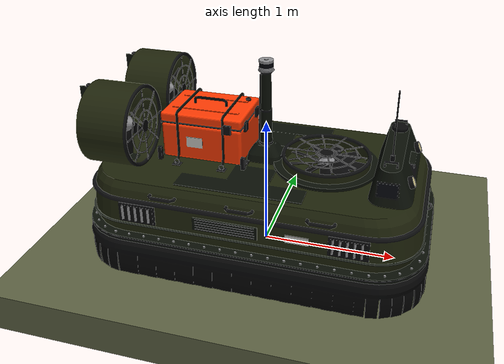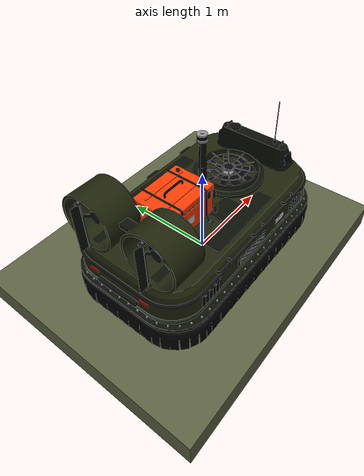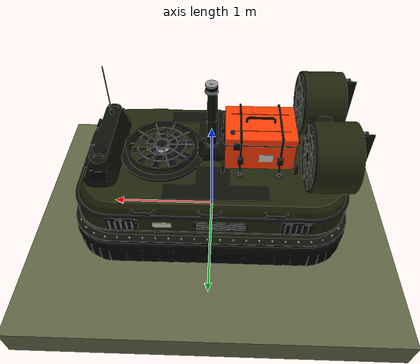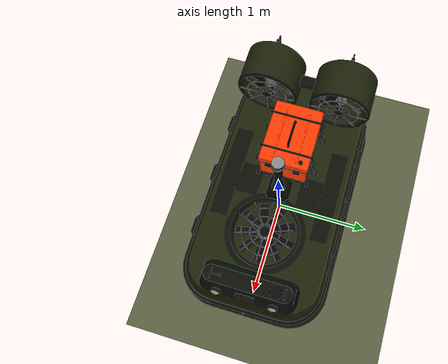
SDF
<sdf version="1.9">
 <world name="v2_turn_test">
  <model name="ground">
   <static>true</static>
   <pose>20.0 0.0 -0.15 0 0 0</pose>
   <link name="link">
    <collision name="c">
     <geometry><box><size>120 120 0.3</size></box></geometry>
     <surface><friction><ode><mu>1.0</mu><mu2>1.0</mu2></ode></friction></surface>
    </collision>
    <visual name="v">
     <geometry><box><size>120 120 0.3</size></box></geometry>
     <material>
      <ambient>0.36 0.38 0.26 1</ambient>
      <diffuse>0.36 0.38 0.26 1</diffuse>
      <specular>0.05 0.05 0.05 1</specular>
     </material>
    </visual>
   </link>
  </model>
  <include><uri>model://hovercraft_v2</uri><name>hovercraft_v2</name><pose>0 0 0.002 0 0 0.0</pose></include>
 </world>
</sdf>
